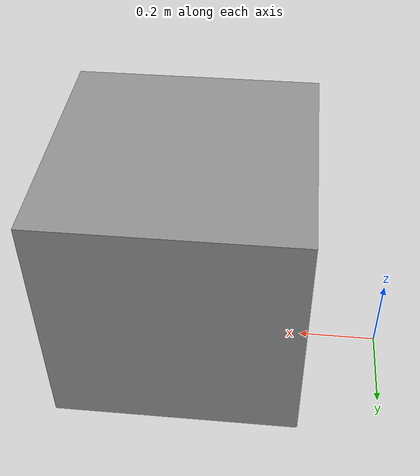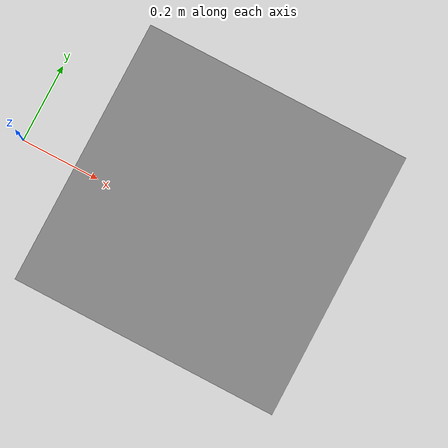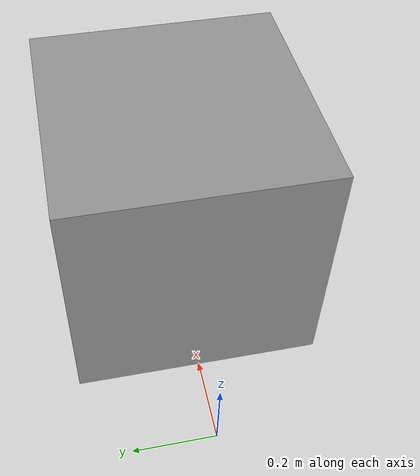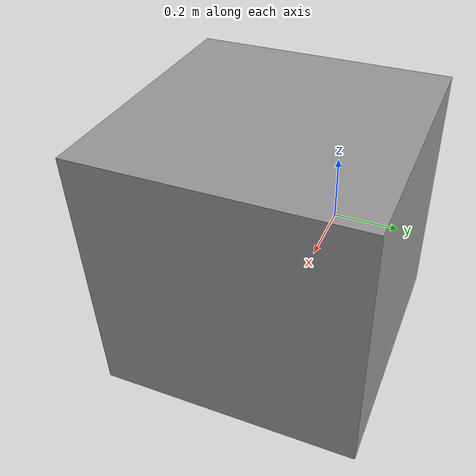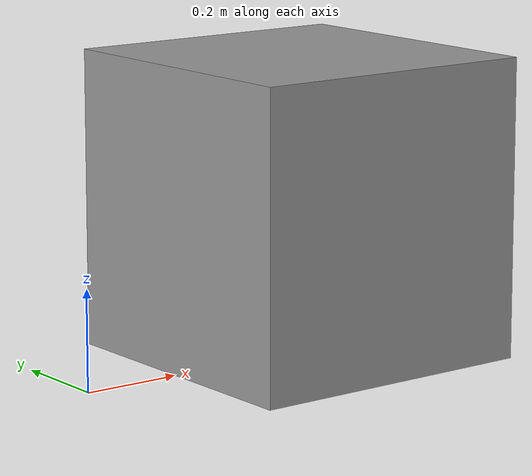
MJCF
<mujoco model="box_high">
    <compiler angle="radian"/>

    <worldbody>
        <body name="box" pos="0.5 0 0.3">
            <joint name="box_joint" type="free" pos="0 0 0"/>
            <geom name="box" type="box" pos="0 0 0" size="0.3 0.3 0.3" rgba="0.6 0.6 0.6 1"/>
        </body>
    </worldbody>

    <actuator />
</mujoco>
